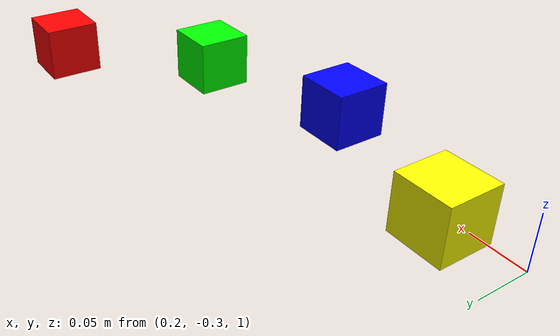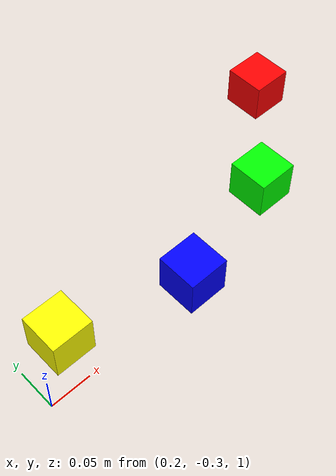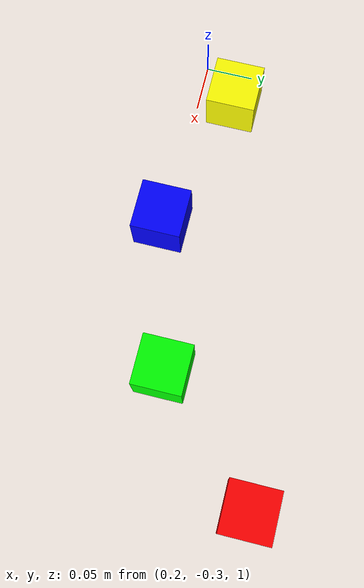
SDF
<sdf version="1.9">
 <world name="pick_n_place">
  <physics name="1ms" type="ignore">
   <max_step_size>0.001</max_step_size>
   <real_time_factor>1.0</real_time_factor>
  </physics>
  <plugin filename="gz-sim-physics-system" name="gz::sim::systems::Physics"/>
  <plugin filename="gz-sim-sensors-system" name="gz::sim::systems::Sensors">
   <render_engine>ogre2</render_engine>
  </plugin>
  <plugin filename="gz-sim-user-commands-system" name="gz::sim::systems::UserCommands"/>
  <plugin filename="gz-sim-scene-broadcaster-system" name="gz::sim::systems::SceneBroadcaster"/>
  <plugin filename="gz-sim-imu-system" name="gz::sim::systems::Imu"/>
  <scene><ambient>1.0 1.0 1.0</ambient><background>0.8 0.8 0.8</background></scene>
  <light type="directional" name="sun">
   <pose>0 0 10 0 0 0</pose>
   <diffuse>0.8 0.8 0.8 1</diffuse>
   <specular>0.8 0.8 0.8 1</specular>
   <attenuation>
    <range>1000</range>
    <constant>0.9</constant>
    <linear>0.01</linear>
    <quadratic>0.001</quadratic>
   </attenuation>
   <direction>-0.5 0.1 -0.9</direction>
  </light>
  <spherical_coordinates>
   <latitude_deg>-35.3632621</latitude_deg>
   <longitude_deg>149.1652374</longitude_deg>
   <elevation>10.0</elevation>
   <heading_deg>0</heading_deg>
   <surface_model>EARTH_WGS84</surface_model>
  </spherical_coordinates>
  <model name="ground_plane">
   <static>true</static>
   <link name="link">
    <collision name="collision">
     <geometry><plane><normal>0 0 1</normal><size>100 100</size></plane></geometry>
    </collision>
    <visual name="visual">
     <geometry><plane><normal>0 0 1</normal><size>100 100</size></plane></geometry>
     <material>
      <ambient>0.8 0.8 0.8 1</ambient>
      <diffuse>0.8 0.8 0.8 1</diffuse>
      <specular>0.8 0.8 0.8 1</specular>
     </material>
    </visual>
   </link>
  </model>
  <model name="red_block">
   <pose degrees="true">0.6568 -0.15 1.041 0 0 0</pose>
   <link name="link">
    <inertial>
     <mass>0.025</mass>
     <inertia>
      <ixx>1.04167E-05</ixx>
      <ixy>0</ixy>
      <ixz>0</ixz>
      <iyy>1.04167E-05</iyy>
      <iyz>0</iyz>
      <izz>1.04167E-05</izz>
     </inertia>
    </inertial>
    <collision name="collision"><geometry><box><size>0.05 0.05 0.05</size></box></geometry></collision>
    <visual name="visual">
     <geometry><box><size>0.05 0.05 0.05</size></box></geometry>
     <material><ambient>1 0 0 1</ambient><diffuse>1 0 0 1</diffuse><specular>1 0 0 1</specular></material>
    </visual>
   </link>
  </model>
  <model name="green_block">
   <pose degrees="true">0.547 -0.2598 1.041 0 0 0</pose>
   <link name="link">
    <inertial>
     <mass>0.025</mass>
     <inertia>
      <ixx>1.04167E-05</ixx>
      <ixy>0</ixy>
      <ixz>0</ixz>
      <iyy>1.04167E-05</iyy>
      <iyz>0</iyz>
      <izz>1.04167E-05</izz>
     </inertia>
    </inertial>
    <collision name="collision"><geometry><box><size>0.05 0.05 0.05</size></box></geometry></collision>
    <visual name="visual">
     <geometry><box><size>0.05 0.05 0.05</size></box></geometry>
     <material><ambient>0 1 0 1</ambient><diffuse>0 1 0 1</diffuse><specular>0 1 0 1</specular></material>
    </visual>
   </link>
  </model>
  <model name="blue_block">
   <pose degrees="true">0.397 -0.3 1.041 0 0 0</pose>
   <link name="link">
    <inertial>
     <mass>0.025</mass>
     <inertia>
      <ixx>1.04167E-05</ixx>
      <ixy>0</ixy>
      <ixz>0</ixz>
      <iyy>1.04167E-05</iyy>
      <iyz>0</iyz>
      <izz>1.04167E-05</izz>
     </inertia>
    </inertial>
    <collision name="collision"><geometry><box><size>0.05 0.05 0.05</size></box></geometry></collision>
    <visual name="visual">
     <geometry><box><size>0.05 0.05 0.05</size></box></geometry>
     <material><ambient>0 0 1 1</ambient><diffuse>0 0 1 1</diffuse><specular>0 0 1 1</specular></material>
    </visual>
   </link>
  </model>
  <model name="yellow_block">
   <pose degrees="true">0.247 -0.2598 1.041 0 0 0</pose>
   <link name="link">
    <inertial>
     <mass>0.025</mass>
     <inertia>
      <ixx>1.04167E-05</ixx>
      <ixy>0</ixy>
      <ixz>0</ixz>
      <iyy>1.04167E-05</iyy>
      <iyz>0</iyz>
      <izz>1.04167E-05</izz>
     </inertia>
    </inertial>
    <collision name="collision"><geometry><box><size>0.05 0.05 0.05</size></box></geometry></collision>
    <visual name="visual">
     <geometry><box><size>0.05 0.05 0.05</size></box></geometry>
     <material><ambient>1 1 0 1</ambient><diffuse>1 1 0 1</diffuse><specular>1 1 0 1</specular></material>
    </visual>
   </link>
  </model>
 </world>
</sdf>
